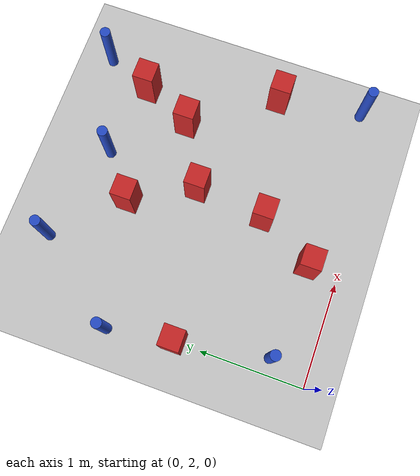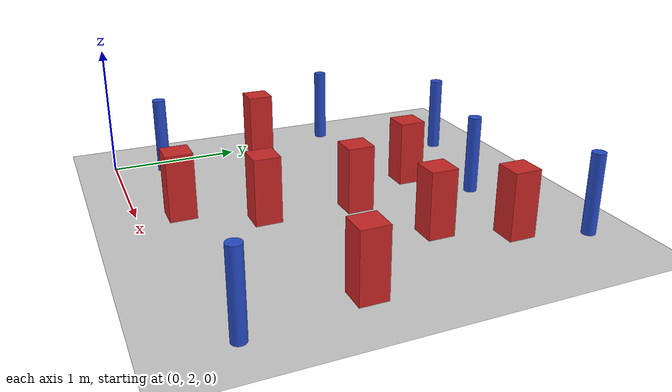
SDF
<sdf version="1.6">
 <world name="default">
  <model name="ground_plane">
   <static>1</static>
   <link name="link">
    <collision name="collision">
     <geometry><plane><normal>0 0 1</normal><size>100 100</size></plane></geometry>
     <surface><friction><ode><mu>100</mu><mu2>50</mu2></ode></friction></surface>
    </collision>
    <visual name="visual">
     <cast_shadows>0</cast_shadows>
     <geometry><plane><normal>0 0 1</normal><size>100 100</size></plane></geometry>
     <material>
      <ambient>1.0 1.0 1.0 1.0</ambient>
      <diffuse>0.8 0.8 0.8 1.0</diffuse>
      <specular>0.01 0.01 0.01 1.000000</specular>
     </material>
    </visual>
   </link>
  </model>
  <model name="square_post_obstacle22">
   <static>true</static>
   <pose>2.27502093735 4.36059536365 1.91545236811e-07 -7.35059704564e-06 1.12565212e-07 2.39332434364e-05</pose>
   <link name="link">
    <pose>0 0 0.25 0 -0 0</pose>
    <inertial>
     <mass>100</mass>
     <inertia>
      <ixx>0.166667</ixx>
      <ixy>0</ixy>
      <ixz>0</ixz>
      <iyy>0.166667</iyy>
      <iyz>0</iyz>
      <izz>0.166667</izz>
     </inertia>
    </inertial>
    <collision name="collision"><geometry><box><size>.2 .2 .5</size></box></geometry></collision>
    <visual name="visual">
     <geometry><box><size>.2 .2 .5</size></box></geometry>
     <material>
      <script><name>Gazebo/Red</name><uri>file://media/materials/scripts/gazebo.material</uri></script>
     </material>
    </visual>
   </link>
  </model>
  <model name="square_post_obstacle31">
   <static>true</static>
   <pose>1.38029985974 2.85222419228 1.91545236811e-07 -7.35059704564e-06 1.12565212e-07 2.39332434364e-05</pose>
   <link name="link">
    <pose>0 0 0.25 0 -0 0</pose>
    <inertial>
     <mass>100</mass>
     <inertia>
      <ixx>0.166667</ixx>
      <ixy>0</ixy>
      <ixz>0</ixz>
      <iyy>0.166667</iyy>
      <iyz>0</iyz>
      <izz>0.166667</izz>
     </inertia>
    </inertial>
    <collision name="collision"><geometry><box><size>.2 .2 .5</size></box></geometry></collision>
    <visual name="visual">
     <geometry><box><size>.2 .2 .5</size></box></geometry>
     <material>
      <script><name>Gazebo/Red</name><uri>file://media/materials/scripts/gazebo.material</uri></script>
     </material>
    </visual>
   </link>
  </model>
  <model name="pole_obstacle28">
   <static>true</static>
   <pose>-0.094796486854 3.88492192691 7.38925637345e-09 -8.471706928e-08 1.24976765098e-08 -1.74513093016e-07</pose>
   <link name="link">
    <pose>0 0 0.3 0 -0 0</pose>
    <inertial>
     <mass>1</mass>
     <inertia><ixx>0.145833</ixx><ixy>0</ixy><ixz>0</ixz><iyy>0.145833</iyy><iyz>0</iyz><izz>0.125</izz></inertia>
    </inertial>
    <collision name="collision">
     <geometry><cylinder><radius>0.05</radius><length>.6</length></cylinder></geometry>
    </collision>
    <visual name="visual">
     <geometry><cylinder><radius>0.05</radius><length>.6</length></cylinder></geometry>
     <material>
      <script><name>Gazebo/Blue</name><uri>file://media/materials/scripts/gazebo.material</uri></script>
     </material>
    </visual>
   </link>
  </model>
  <model name="pole_obstacle73">
   <static>true</static>
   <pose>0.155944475599 2.37688619875 7.38925637345e-09 -8.47170692792e-08 1.24976764391e-08 -1.74513093041e-07</pose>
   <link name="link">
    <pose>0 0 0.3 0 -0 0</pose>
    <inertial>
     <mass>1</mass>
     <inertia><ixx>0.145833</ixx><ixy>0</ixy><ixz>0</ixz><iyy>0.145833</iyy><iyz>0</iyz><izz>0.125</izz></inertia>
    </inertial>
    <collision name="collision">
     <geometry><cylinder><radius>0.05</radius><length>.6</length></cylinder></geometry>
    </collision>
    <visual name="visual">
     <geometry><cylinder><radius>0.05</radius><length>.6</length></cylinder></geometry>
     <material>
      <script><name>Gazebo/Blue</name><uri>file://media/materials/scripts/gazebo.material</uri></script>
     </material>
    </visual>
   </link>
  </model>
  <model name="square_post_obstacle85">
   <static>true</static>
   <pose>2.04594827178 3.86359233053 1.91545236811e-07 -7.35059704564e-06 1.12565212e-07 2.39332434364e-05</pose>
   <link name="link">
    <pose>0 0 0.25 0 -0 0</pose>
    <inertial>
     <mass>100</mass>
     <inertia>
      <ixx>0.166667</ixx>
      <ixy>0</ixy>
      <ixz>0</ixz>
      <iyy>0.166667</iyy>
      <iyz>0</iyz>
      <izz>0.166667</izz>
     </inertia>
    </inertial>
    <collision name="collision"><geometry><box><size>.2 .2 .5</size></box></geometry></collision>
    <visual name="visual">
     <geometry><box><size>.2 .2 .5</size></box></geometry>
     <material>
      <script><name>Gazebo/Red</name><uri>file://media/materials/scripts/gazebo.material</uri></script>
     </material>
    </visual>
   </link>
  </model>
  <model name="pole_obstacle108">
   <static>true</static>
   <pose>1.52575746427 4.48798742755 7.38925637345e-09 -8.47170692799e-08 1.24976765033e-08 -1.74513093018e-07</pose>
   <link name="link">
    <pose>0 0 0.3 0 -0 0</pose>
    <inertial>
     <mass>1</mass>
     <inertia><ixx>0.145833</ixx><ixy>0</ixy><ixz>0</ixz><iyy>0.145833</iyy><iyz>0</iyz><izz>0.125</izz></inertia>
    </inertial>
    <collision name="collision">
     <geometry><cylinder><radius>0.05</radius><length>.6</length></cylinder></geometry>
    </collision>
    <visual name="visual">
     <geometry><cylinder><radius>0.05</radius><length>.6</length></cylinder></geometry>
     <material>
      <script><name>Gazebo/Blue</name><uri>file://media/materials/scripts/gazebo.material</uri></script>
     </material>
    </visual>
   </link>
  </model>
  <model name="square_post_obstacle108">
   <static>true</static>
   <pose>1.07884321059 2.31070785407 1.91545236811e-07 -7.35059704564e-06 1.12565212e-07 2.39332434364e-05</pose>
   <link name="link">
    <pose>0 0 0.25 0 -0 0</pose>
    <inertial>
     <mass>100</mass>
     <inertia>
      <ixx>0.166667</ixx>
      <ixy>0</ixy>
      <ixz>0</ixz>
      <iyy>0.166667</iyy>
      <iyz>0</iyz>
      <izz>0.166667</izz>
     </inertia>
    </inertial>
    <collision name="collision"><geometry><box><size>.2 .2 .5</size></box></geometry></collision>
    <visual name="visual">
     <geometry><box><size>.2 .2 .5</size></box></geometry>
     <material>
      <script><name>Gazebo/Red</name><uri>file://media/materials/scripts/gazebo.material</uri></script>
     </material>
    </visual>
   </link>
  </model>
  <model name="square_post_obstacle126">
   <static>true</static>
   <pose>1.44611811774 3.5366906837 1.91545236811e-07 -7.35059704564e-06 1.12565212e-07 2.39332434364e-05</pose>
   <link name="link">
    <pose>0 0 0.25 0 -0 0</pose>
    <inertial>
     <mass>100</mass>
     <inertia>
      <ixx>0.166667</ixx>
      <ixy>0</ixy>
      <ixz>0</ixz>
      <iyy>0.166667</iyy>
      <iyz>0</iyz>
      <izz>0.166667</izz>
     </inertia>
    </inertial>
    <collision name="collision"><geometry><box><size>.2 .2 .5</size></box></geometry></collision>
    <visual name="visual">
     <geometry><box><size>.2 .2 .5</size></box></geometry>
     <material>
      <script><name>Gazebo/Red</name><uri>file://media/materials/scripts/gazebo.material</uri></script>
     </material>
    </visual>
   </link>
  </model>
  <model name="square_post_obstacle149">
   <static>true</static>
   <pose>2.5971655841 3.0829335772 1.91545236811e-07 -7.35059704564e-06 1.12565212e-07 2.39332434364e-05</pose>
   <link name="link">
    <pose>0 0 0.25 0 -0 0</pose>
    <inertial>
     <mass>100</mass>
     <inertia>
      <ixx>0.166667</ixx>
      <ixy>0</ixy>
      <ixz>0</ixz>
      <iyy>0.166667</iyy>
      <iyz>0</iyz>
      <izz>0.166667</izz>
     </inertia>
    </inertial>
    <collision name="collision"><geometry><box><size>.2 .2 .5</size></box></geometry></collision>
    <visual name="visual">
     <geometry><box><size>.2 .2 .5</size></box></geometry>
     <material>
      <script><name>Gazebo/Red</name><uri>file://media/materials/scripts/gazebo.material</uri></script>
     </material>
    </visual>
   </link>
  </model>
  <model name="pole_obstacle169">
   <static>true</static>
   <pose>2.47045571796 4.84087708348 7.38925637345e-09 -8.47170692798e-08 1.24976765033e-08 -1.74513093019e-07</pose>
   <link name="link">
    <pose>0 0 0.3 0 -0 0</pose>
    <inertial>
     <mass>1</mass>
     <inertia><ixx>0.145833</ixx><ixy>0</ixy><ixz>0</ixz><iyy>0.145833</iyy><iyz>0</iyz><izz>0.125</izz></inertia>
    </inertial>
    <collision name="collision">
     <geometry><cylinder><radius>0.05</radius><length>.6</length></cylinder></geometry>
    </collision>
    <visual name="visual">
     <geometry><cylinder><radius>0.05</radius><length>.6</length></cylinder></geometry>
     <material>
      <script><name>Gazebo/Blue</name><uri>file://media/materials/scripts/gazebo.material</uri></script>
     </material>
    </visual>
   </link>
  </model>
  <model name="square_post_obstacle179">
   <static>true</static>
   <pose>0.00575124392225 3.25297368594 1.91545236811e-07 -7.35059704564e-06 1.12565212e-07 2.39332434364e-05</pose>
   <link name="link">
    <pose>0 0 0.25 0 -0 0</pose>
    <inertial>
     <mass>100</mass>
     <inertia>
      <ixx>0.166667</ixx>
      <ixy>0</ixy>
      <ixz>0</ixz>
      <iyy>0.166667</iyy>
      <iyz>0</iyz>
      <izz>0.166667</izz>
     </inertia>
    </inertial>
    <collision name="collision"><geometry><box><size>.2 .2 .5</size></box></geometry></collision>
    <visual name="visual">
     <geometry><box><size>.2 .2 .5</size></box></geometry>
     <material>
      <script><name>Gazebo/Red</name><uri>file://media/materials/scripts/gazebo.material</uri></script>
     </material>
    </visual>
   </link>
  </model>
  <model name="pole_obstacle207">
   <static>true</static>
   <pose>0.546904626796 4.72889594164 7.38925637345e-09 -8.47170692799e-08 1.24976765073e-08 -1.74513093015e-07</pose>
   <link name="link">
    <pose>0 0 0.3 0 -0 0</pose>
    <inertial>
     <mass>1</mass>
     <inertia><ixx>0.145833</ixx><ixy>0</ixy><ixz>0</ixz><iyy>0.145833</iyy><iyz>0</iyz><izz>0.125</izz></inertia>
    </inertial>
    <collision name="collision">
     <geometry><cylinder><radius>0.05</radius><length>.6</length></cylinder></geometry>
    </collision>
    <visual name="visual">
     <geometry><cylinder><radius>0.05</radius><length>.6</length></cylinder></geometry>
     <material>
      <script><name>Gazebo/Blue</name><uri>file://media/materials/scripts/gazebo.material</uri></script>
     </material>
    </visual>
   </link>
  </model>
  <model name="pole_obstacle225">
   <static>true</static>
   <pose>2.72821072776 2.25724897942 7.38925637345e-09 -8.47170692798e-08 1.24976764939e-08 -1.74513093025e-07</pose>
   <link name="link">
    <pose>0 0 0.3 0 -0 0</pose>
    <inertial>
     <mass>1</mass>
     <inertia><ixx>0.145833</ixx><ixy>0</ixy><ixz>0</ixz><iyy>0.145833</iyy><iyz>0</iyz><izz>0.125</izz></inertia>
    </inertial>
    <collision name="collision">
     <geometry><cylinder><radius>0.05</radius><length>.6</length></cylinder></geometry>
    </collision>
    <visual name="visual">
     <geometry><cylinder><radius>0.05</radius><length>.6</length></cylinder></geometry>
     <material>
      <script><name>Gazebo/Blue</name><uri>file://media/materials/scripts/gazebo.material</uri></script>
     </material>
    </visual>
   </link>
  </model>
  <model name="square_post_obstacle219">
   <static>true</static>
   <pose>1.1200099648 4.13160998808 1.91545236811e-07 -7.35059704564e-06 1.12565212e-07 2.39332434364e-05</pose>
   <link name="link">
    <pose>0 0 0.25 0 -0 0</pose>
    <inertial>
     <mass>100</mass>
     <inertia>
      <ixx>0.166667</ixx>
      <ixy>0</ixy>
      <ixz>0</ixz>
      <iyy>0.166667</iyy>
      <iyz>0</iyz>
      <izz>0.166667</izz>
     </inertia>
    </inertial>
    <collision name="collision"><geometry><box><size>.2 .2 .5</size></box></geometry></collision>
    <visual name="visual">
     <geometry><box><size>.2 .2 .5</size></box></geometry>
     <material>
      <script><name>Gazebo/Red</name><uri>file://media/materials/scripts/gazebo.material</uri></script>
     </material>
    </visual>
   </link>
  </model>
 </world>
</sdf>
